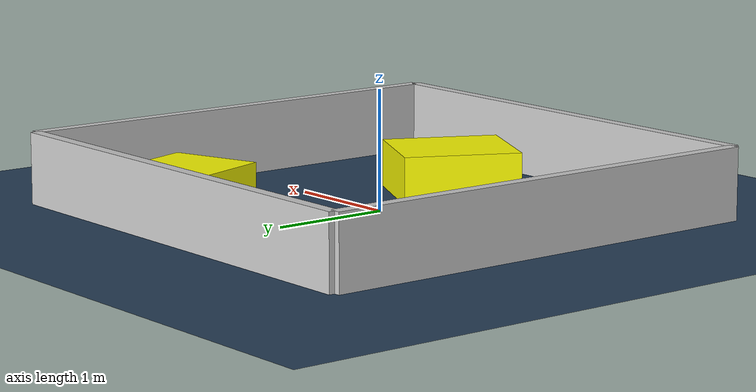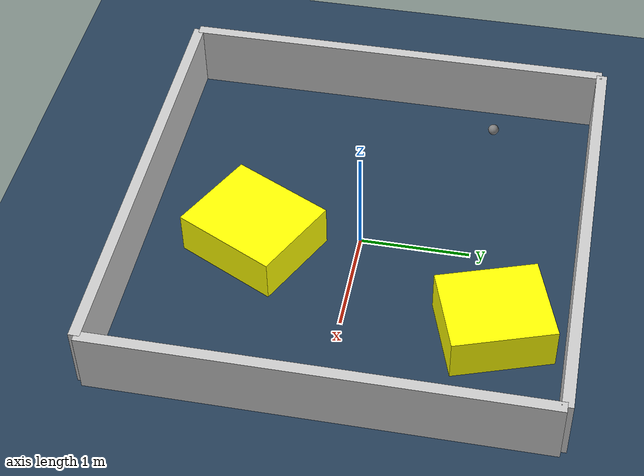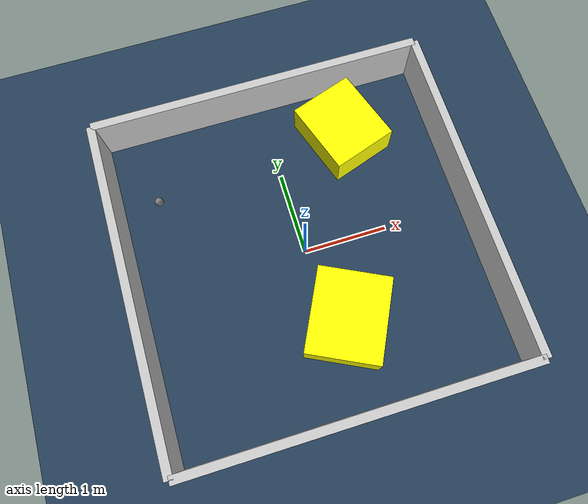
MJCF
<?xml version="1.0" ?>
<mujoco model="generated_environment">
  <option timestep="0.01" integrator="RK4" cone="elliptic"/>
  <default>
    <geom density="1"/>
  </default>
  <asset>
    <texture builtin="gradient" height="3072" rgb1="0.3 0.5 0.7" rgb2="0 0 0" type="skybox" width="512"/>
    <texture builtin="checker" height="300" mark="edge" markrgb="0.8 0.8 0.8" name="groundplane" rgb1="0.2 0.3 0.4" rgb2="0.1 0.2 0.3" type="2d" width="300"/>
    <material name="groundplane" reflectance="0.2" texrepeat="5 5" texture="groundplane" texuniform="true"/>
    <material name="robot" rgba="0.0 1.0 0.0 1"/>
  </asset>
  <worldbody>
    <light dir="0 0 -1" directional="true" pos="0 0 1.5"/>
    <geom condim="4" friction="1.0 0.005 0.001" material="groundplane" name="floor" size="0 0 0.05" type="plane"/>
    <body name="walls">
      <geom name="wall_1" condim="4" pos="-2.0 0.0 0.3" rgba="0.800000011920929 0.800000011920929 0.800000011920929 1.0" size="0.05 2.0 0.3" type="box"/>
      <geom name="wall_2" condim="4" pos="2.0 0.0 0.3" rgba="0.800000011920929 0.800000011920929 0.800000011920929 1.0" size="0.05 2.0 0.3" type="box"/>
      <geom name="wall_3" condim="4" pos="0.0 -2.0 0.3" rgba="0.800000011920929 0.800000011920929 0.800000011920929 1.0" size="2.0 0.05 0.3" type="box"/>
      <geom name="wall_4" condim="4" pos="0.0 2.0 0.3" rgba="0.800000011920929 0.800000011920929 0.800000011920929 1.0" size="2.0 0.05 0.3" type="box"/>
    </body>
    <body name="robot">
      <joint name="joint_x" type="slide" pos="0 0 0" axis="1 0 0"/>
      <joint name="joint_y" type="slide" pos="0 0 0" axis="0 1 0"/>
      <geom name="robot" type="sphere" pos="-1.4932942884446367 1.0350415882669588 0.2" size="0.05" mass="5." friction="1.0 0.005 0.0001" condim="4"/>
      <site name="sensor_ball"/>
    </body>
    <body name="obstacle_1_movable">
      <geom name="obstacle_1_movable" condim="4" pos="0.21613914526015354 -0.9365230884171439 0.2" euler="0 0 333.6321138165659" friction="1.0 0.005 0.001" rgba="1 1 0 1" size="0.42496135314607314 0.4956716415884453 0.2" type="box" mass="0.1"/>
      <joint type="free"/>
    </body>
    <body name="obstacle_2_movable">
      <geom name="obstacle_2_movable" condim="4" pos="0.8798319184375549 1.3195453837193736 0.2" euler="0 0 288.69399150296147" friction="1.0 0.005 0.001" rgba="1 1 0 1" size="0.4569997111597257 0.3958416799326294 0.2" type="box" mass="0.1"/>
      <joint type="free"/>
    </body>
  </worldbody>
  <actuator>
    <motor name="actuator_x" joint="joint_x" gear="1" ctrlrange="-1 1"/>
    <motor name="actuator_y" joint="joint_y" gear="1" ctrlrange="-1 1"/>
  </actuator>
</mujoco>
